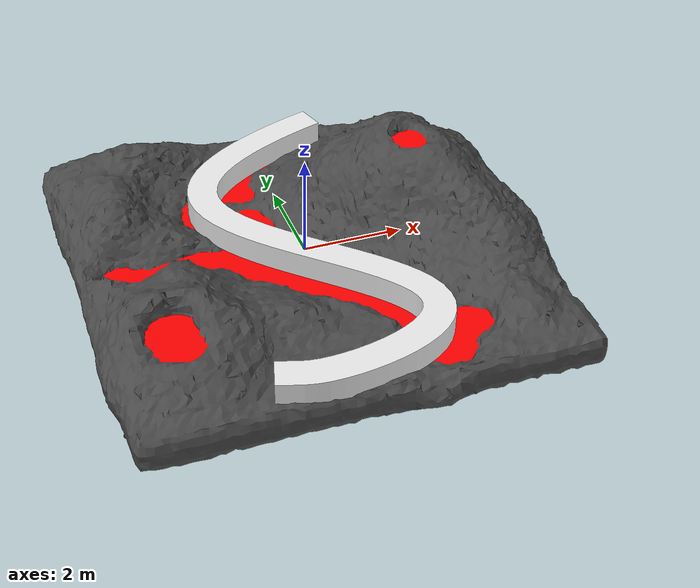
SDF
<?xml version="1.0" ?>
<sdf version="1.4">
  <world name="default">
    <!-- A global light source -->
    <include>
      <uri>model://sun</uri>
    </include>
    <include>
      <uri>model://bod_volcano</uri>
    </include>
    <include>
      <uri>model://bod_ice</uri>
    </include>
  </world>
</sdf>

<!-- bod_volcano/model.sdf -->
<sdf version="1.5">
  <model name="bod_volcano">
    <static>true</static>
    <link name="link">
	<pose>0 0 0 0 0 0</pose>
      <collision name="collision">
       <geometry>
          <mesh>
		  <uri>model://bod_volcano/meshes/NoBridge.dae</uri>
	     <scale>0.0335 0.0335 0.0335</scale>
	  </mesh>
        </geometry>
        <surface>
          <contact>
             <collide_bitmask>0xffff</collide_bitmask>
          </contact>
          <friction>
            <ode>
              <mu>100</mu>
              <mu2>50</mu2>
            </ode>
          </friction>
        </surface>
      </collision>
      <visual name="visual">
       <geometry>
          <mesh>
		  <uri>model://bod_volcano/meshes/NoBridge.dae</uri>
	  <scale>0.0335 0.0335 0.0335</scale>
	  </mesh>
        </geometry>
      </visual>
    </link>
  </model>
</sdf>

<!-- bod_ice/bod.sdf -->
<sdf version="1.5">
  <model name="bridge_of_doom">
    <static>true</static>
    <link name="link">
      <collision name="collision">
	<geometry>
	  <mesh>
            <uri>model://bod/meshes/bridge_of_doom.dae</uri>
          </mesh>
        </geometry>
	<surface>
	  <contact>
	    <collide_bitmask>0xffff</collide_bitmask>
          </contact>
	  <friction>
  	    <ode>
              <mu>0.01</mu>
	      <mu2>0.02</mu2>
	      <slip1>0.4</slip1>
	      <slip2>0.4</slip2>
            </ode>
          </friction>
          </surface>
        </collision>
      <visual name="visual">
	<geometry>
	  <mesh>
            <uri>model://bod/meshes/bridge_of_doom.dae</uri>
          </mesh>
	</geometry>
        <material>
          <script>
            <uri>file://media/materials/scripts/gazebo.material</uri>
            <name>Gazebo/WhiteGlow</name>
          </script>
        </material>
	</visual>
      </link>
    </model>
</sdf>
